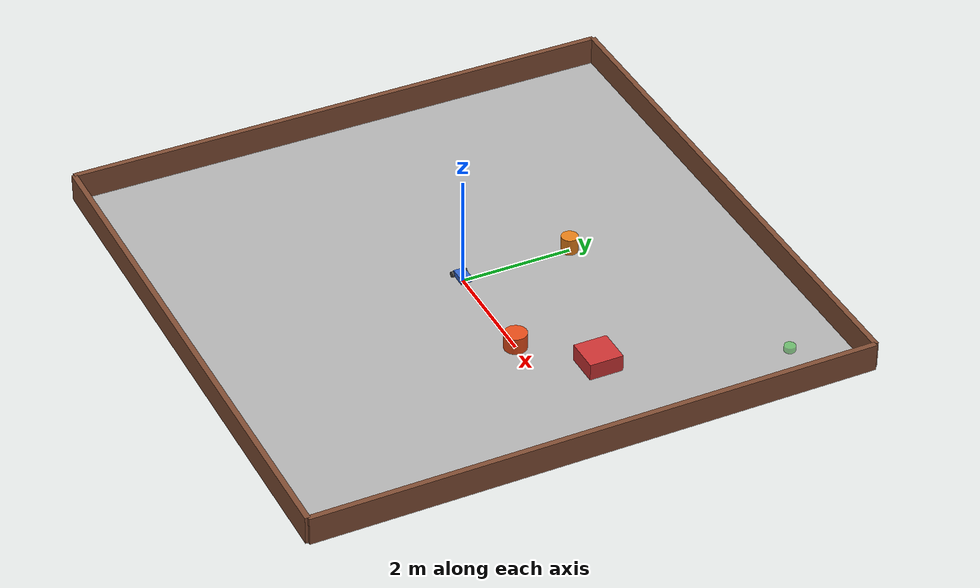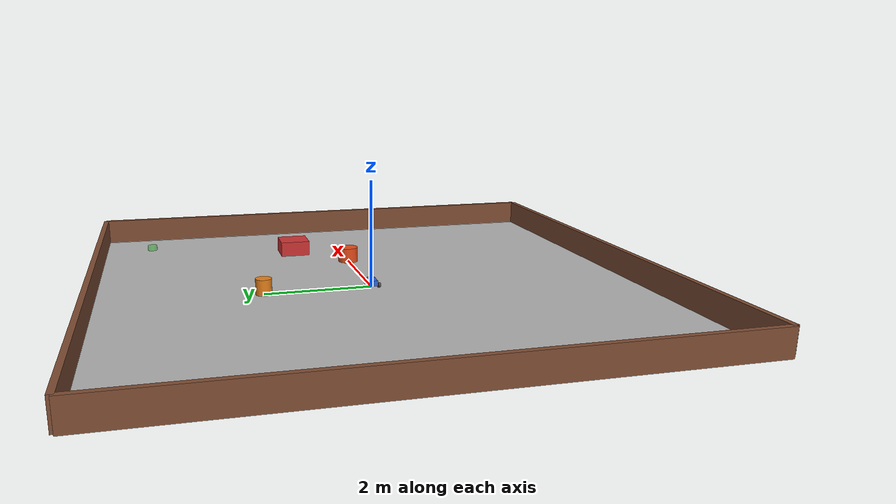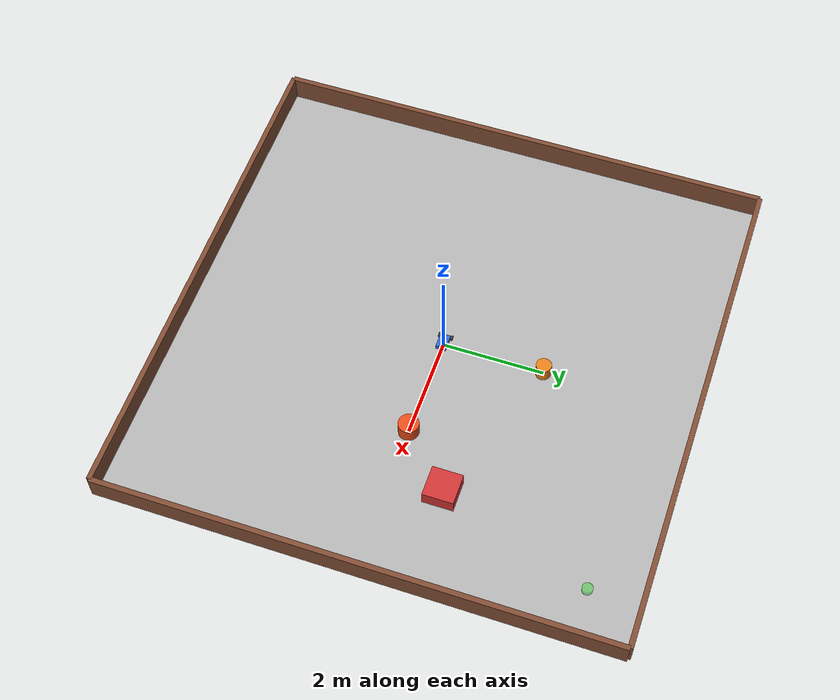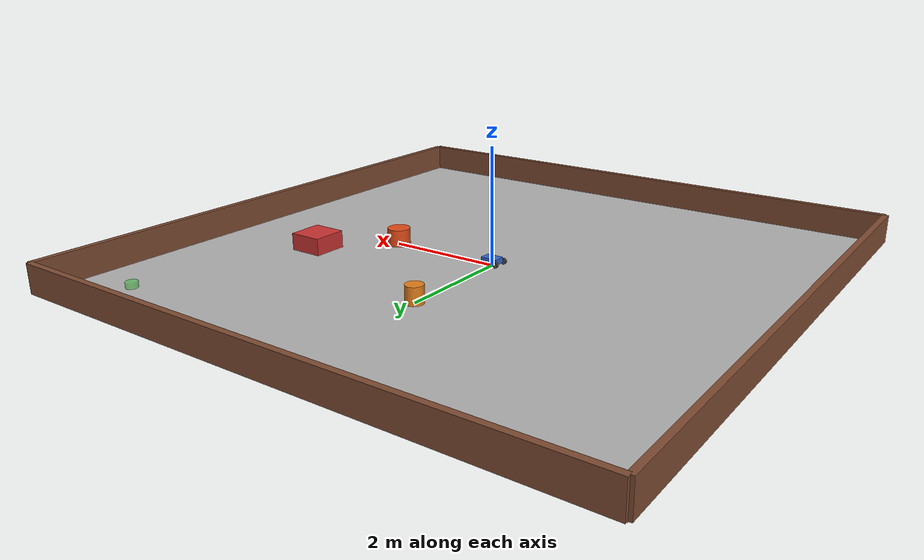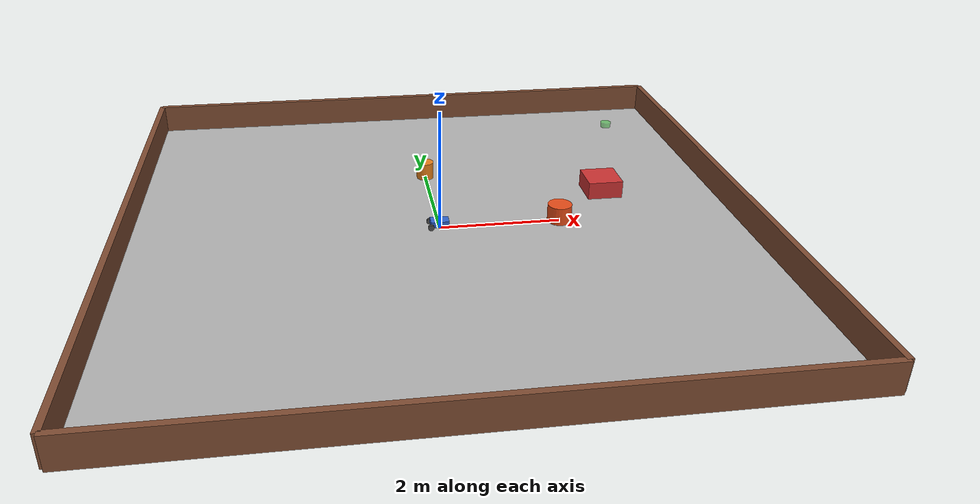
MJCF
<mujoco model="dynamic_obstacles">
  <option timestep="0.002" gravity="0 0 -9.81"/>

  <asset>
    <texture name="grid" type="2d" builtin="checker" rgb1="0.8 0.8 0.8" rgb2="0.6 0.6 0.6" width="512" height="512"/>
    <material name="grid_mat" texture="grid" texrepeat="8 8" reflectance="0.1"/>
  </asset>

  <worldbody>
    <geom name="ground" type="plane" size="5 5 0.1" material="grid_mat"/>

    <!-- Walls -->
    <body name="walls" pos="0 0 0.25">
      <geom name="wall_north" type="box" pos="0 5 0" size="5 0.05 0.25" rgba="0.5 0.3 0.2 1"/>
      <geom name="wall_south" type="box" pos="0 -5 0" size="5 0.05 0.25" rgba="0.5 0.3 0.2 1"/>
      <geom name="wall_east" type="box" pos="5 0 0" size="0.05 5 0.25" rgba="0.5 0.3 0.2 1"/>
      <geom name="wall_west" type="box" pos="-5 0 0" size="0.05 5 0.25" rgba="0.5 0.3 0.2 1"/>
    </body>

    <!-- Dynamic obstacle 1: slides along y-axis -->
    <body name="dyn_obs_1" pos="2 0 0.15">
      <joint name="dyn_obs_1_slide" type="slide" axis="0 1 0" range="-2 2"/>
      <geom name="dyn_obs_1_geom" type="cylinder" size="0.2 0.15" rgba="0.9 0.3 0.1 1"/>
    </body>

    <!-- Dynamic obstacle 2: slides along x-axis -->
    <body name="dyn_obs_2" pos="0 2 0.15">
      <joint name="dyn_obs_2_slide" type="slide" axis="1 0 0" range="-2 2"/>
      <geom name="dyn_obs_2_geom" type="cylinder" size="0.15 0.15" rgba="0.9 0.5 0.1 1"/>
    </body>

    <!-- Static obstacle -->
    <body name="obstacle1" pos="3 1 0.15">
      <geom name="obs1" type="box" size="0.3 0.3 0.15" rgba="0.8 0.2 0.2 1"/>
    </body>

    <!-- Robot (identical to flat_ground.xml) -->
    <body name="robot_chassis" pos="0 0 0.1">
      <joint name="robot_free" type="free"/>
      <geom name="chassis" type="box" size="0.15 0.1 0.05" mass="2.0" rgba="0.2 0.4 0.8 1"/>
      <body name="left_wheel" pos="-0.15 0.12 -0.03">
        <joint name="left_wheel_joint" type="hinge" axis="0 1 0"/>
        <geom name="left_wheel_geom" type="cylinder" size="0.05 0.02" rgba="0.3 0.3 0.3 1" euler="90 0 0"/>
      </body>
      <body name="right_wheel" pos="-0.15 -0.12 -0.03">
        <joint name="right_wheel_joint" type="hinge" axis="0 1 0"/>
        <geom name="right_wheel_geom" type="cylinder" size="0.05 0.02" rgba="0.3 0.3 0.3 1" euler="90 0 0"/>
      </body>
      <body name="caster" pos="0.12 0 -0.04">
        <geom name="caster_geom" type="sphere" size="0.02" rgba="0.5 0.5 0.5 1"/>
      </body>
    </body>

    <body name="goal_marker" pos="4 4 0.05">
      <geom name="goal_geom" type="cylinder" size="0.1 0.05" rgba="0.2 0.8 0.2 0.5"/>
    </body>
  </worldbody>

  <actuator>
    <velocity name="left_motor" joint="left_wheel_joint" kv="1"/>
    <velocity name="right_motor" joint="right_wheel_joint" kv="1"/>
    <!-- Position actuators for dynamic obstacles (driven by simulation code) -->
    <position name="dyn_act_1" joint="dyn_obs_1_slide" kp="100"/>
    <position name="dyn_act_2" joint="dyn_obs_2_slide" kp="100"/>
  </actuator>
</mujoco>
